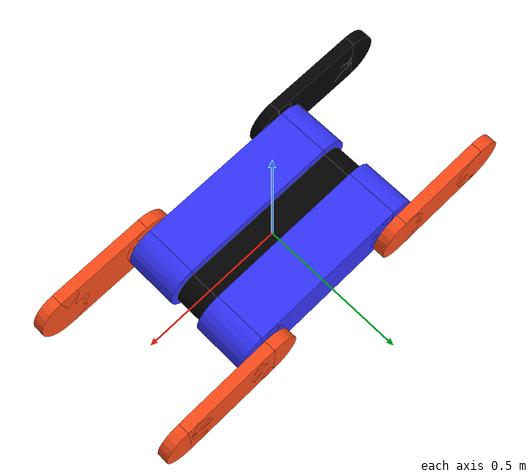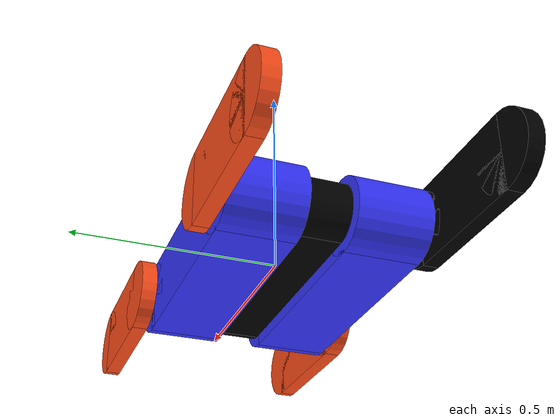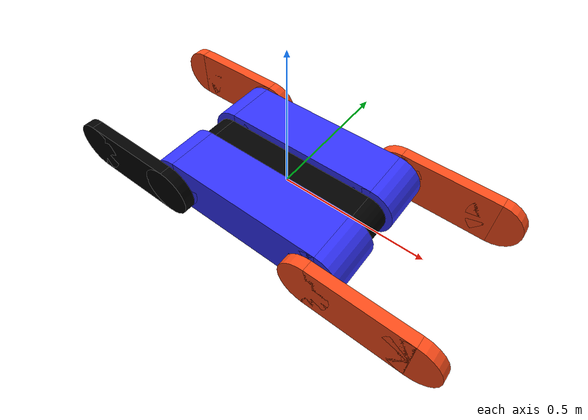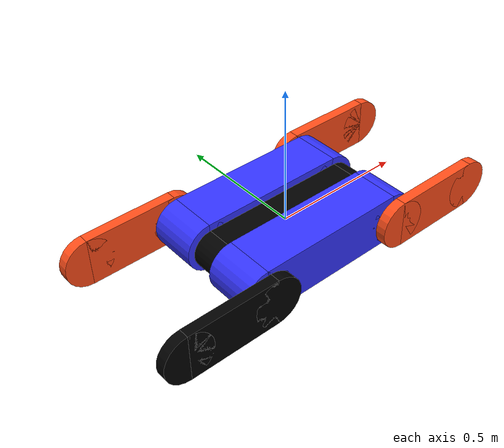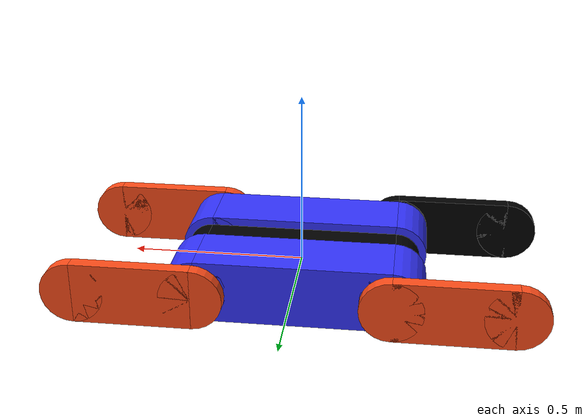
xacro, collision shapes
<?xml version='1.0'?>
<!-- This model is based on the robot developed by the NuBot team, this includes all the meshes -->

<robot name="tracked_vehicle" xmlns:xacro="http://www.ros.org/wiki/xacro">

    <gazebo>
        <self_collide>1</self_collide>
 </gazebo>
    <!-- Variables -->

    <xacro:property name="PI" value="3.1415926535897931"/>
    <xacro:property name="base_mass" value="15" />
    <xacro:property name="track_mass" value="10" />
    <xacro:property name="flipper_mass" value="2.5" />
    <xacro:property name="track_radius" value="0.091" />
    <xacro:property name="track_width" value="0.18" />
    <xacro:property name="track_length" value="0.552" />
    <xacro:property name="track_distance" value="0.145" />
    <xacro:property name="flipper_radius" value="0.09" />
    <xacro:property name="flipper_width" value="0.038" />
    <xacro:property name="flipper_length" value="0.336" />
    <xacro:property name="flipper_distance" value="0.266" />
    <xacro:property name="flipper_visual_bias" value="0.016" />

    <!-- Variables -->

    <!-- Colours -->

    <material name="white">
        <color rgba="1 1 1 1" />
    </material>
    <material name="orange">
        <color rgba="1 0.3 0.1 1"/>
    </material>
    <material name="blue">
        <color rgba="0.2 0.2 1 1"/>
    </material>
    <material name="black">
        <color rgba="0 0 0 1"/>
    </material>

    <!-- Colours -->

    <!-- BASE LINK -->

    <link name="base_link"/>

    <joint name="chassis_joint" type="fixed">
        <parent link="base_link"/>
        <child link="chassis_link"/>
        <origin xyz="-0.0 0 0"/>
    </joint>

    <!-- BASE LINK -->

    <!--chassis_link-->
    <link name='chassis_link'>

        <inertial>
            <origin xyz="0 0 0" rpy="0 0 0" />
            <mass value="${base_mass}" />
            <inertia ixx="5" ixy="0" ixz="0"
                iyy="5" iyz="0"
                izz="5" />
        </inertial>

        <collision name='base_collision_1'>
            <origin xyz="${track_length/2} 0 0" rpy="${PI/2} 0 0" />
            <geometry>
                <cylinder radius="0.07" length="0.10"/>
            </geometry>
        </collision>

        <collision name='base_collision_2'>
            <origin xyz="${-1*track_length/2} 0 0" rpy="${PI/2} 0 0" />
            <geometry>
                <cylinder radius="0.07" length="0.10"/>
            </geometry>
        </collision>

        <collision name='base_collision'>
            <origin xyz="0 0 0" rpy="0 0 0" />
            <geometry>
                <box size="${track_length} 0.10 0.14" />
            </geometry>
        </collision>

        <visual name='base_visual'>
            <origin xyz="0 0 0" rpy="0 0 0" />
            <material name="black"/>
            <geometry>
                <mesh filename="$(find tracked_robot)/description/meshes/base_link.STL" />
            </geometry>
        </visual>
    </link>

    <!--chassis_link-->

    <gazebo reference="chassis_link">
        <self_collide>1</self_collide>
        <mu1>1</mu1>
        <mu2>1</mu2>
        <kp value="10000000.0" />
        <kd value="1.0" />
        <fdir1 value="0 1 0" />
        <gravity>1</gravity>
        <maxContacts>2</maxContacts>
    </gazebo>

    <!--left_track - LINK-->

    <link name='left_track_link'>

        <inertial>
            <origin xyz="0 0 0" rpy="0 0 0" />
            <mass value="${track_mass}" />
            <inertia ixx="5" ixy="0" ixz="0"
                iyy="5" iyz="0"
                izz="5" />
        </inertial>

        <visual name='left_track_visual'>
            <origin xyz="0 ${-1*track_distance} 0" rpy="0 0 0" />
            <material name="blue"/>
            <geometry>
                <mesh filename="$(find tracked_robot)/description/meshes/left_track_link.STL" />
            </geometry>
        </visual>

        <collision name='left_track_collision_1'>
            <origin xyz="${track_length/2} 0 0" rpy="${PI/2} 0 0" />
            <geometry>
                <cylinder radius="${track_radius}" length="${track_width}"/>
            </geometry>
        </collision>

        <collision name='left_track_collision_2'>
            <origin xyz="${-1*track_length/2} 0 0" rpy="${PI/2} 0 0" />
            <geometry>
                <cylinder radius="${track_radius}" length="${track_width}"/>
            </geometry>
        </collision>

        <collision name='left_track_collision'>
            <origin xyz="0 0 0" rpy="0 0 0" />
            <geometry>
                <box size="${track_length} ${track_width} ${track_radius*2}" />
            </geometry>
        </collision>
    </link>

    <!--left_track - LINK-->

    <gazebo reference="left_track_link">
        <self_collide>1</self_collide>
        <mu1>10</mu1>
        <mu2>10</mu2>
        <kp value="10000000.0" />
        <kd value="1.0" />
        <fdir1 value="0 1 0" />
        <gravity>1</gravity>
        <maxContacts>2</maxContacts>
    </gazebo>

    <!--left_track joints-->

    <joint name='left_track_joint' type='revolute'>
        <!-- fixed -->
        <origin xyz="0 ${track_distance} 0" rpy="0 0 0" />
        <child link="left_track_link" />
        <parent link="chassis_link" />
        <limit lower="-1e-16" upper="1e-16" effort="10000" velocity="10000"/>
        <!-- This cannot be zero -->
        <axis xyz="0 0 0.00001"/>
        <dynamics damping="10000" friction="10000"/>
    </joint>

    <!--right_track - LINK-->

    <link name='right_track_link'>

        <inertial>
            <origin xyz="0 0 0" rpy="0 0 0" />
            <mass value="${track_mass}" />
            <inertia ixx="5" ixy="0" ixz="0"
                iyy="5" iyz="0"
                izz="5" />
        </inertial>

        <visual name='right_track_visual'>
            <origin xyz="0 ${track_distance} 0" rpy="0 0 0" />
            <material name="blue"/>
            <geometry>
                <mesh filename="$(find tracked_robot)/description/meshes/right_track_link.STL" />
            </geometry>
        </visual>

        <collision name='right_track_collision_1'>
            <origin xyz="${track_length/2} 0 0" rpy="${PI/2} 0 0" />
            <geometry>
                <cylinder radius="${track_radius}" length="${track_width}"/>
            </geometry>
        </collision>

        <collision name='right_track_collision_2'>
            <origin xyz="${-1*track_length/2} 0 0" rpy="${PI/2} 0 0" />
            <geometry>
                <cylinder radius="${track_radius}" length="${track_width}"/>
            </geometry>
        </collision>

        <collision name='right_track_collision'>
            <origin xyz="0 0 0" rpy="0 0 0" />
            <geometry>
                <box size="${track_length} ${track_width} ${track_radius*2}" />
            </geometry>
        </collision>
    </link>

    <!--right_track - LINK-->

    <gazebo reference="right_track_link">
        <self_collide>1</self_collide>
        <mu1>10</mu1>
        <mu2>10</mu2>
        <kp value="10000000.0" />
        <kd value="1.0" />
        <fdir1 value="0 1 0" />
        <gravity>1</gravity>
        <maxContacts>2</maxContacts>
    </gazebo>

    <!--right_track joints-->

    <joint name='right_track_joint' type='revolute'>
        <!-- fixed -->
        <origin xyz="0 ${-1*track_distance} 0" rpy="0 0 0" />
        <parent link="chassis_link" />
        <child link="right_track_link" />
        <limit lower="-1e-16" upper="1e-16" effort="10000" velocity="10000"/>
        <axis xyz="0 0 0.000001"/>
        <dynamics damping="10000" friction="10000"/>
    </joint>

    <!--rear_left_flipper - LINK-->

    <link name='rear_left_flipper_link'>

        <inertial>
            <origin xyz="${-1*flipper_length/2} 0 0" rpy="0 0 0" />
            <mass value="${flipper_mass}" />
            <inertia ixx="5" ixy="0" ixz="0"
                iyy="5" iyz="0"
                izz="5" />
        </inertial>

        <visual name='rear_left_flipper_visual'>

            <origin xyz="0 ${-1*flipper_visual_bias} 0" rpy="0 0 0" />
            <material name="orange"/>
            <geometry>
                <mesh filename="$(find tracked_robot)/description/meshes/back_left_fin_link.STL" />
            </geometry>

        </visual>

        <collision name='rear_left_flipper_collision_large_wheel_collision'>
            <origin xyz="0 0 0" rpy="${PI/2} 0 0" />
            <geometry>
                <cylinder radius="${flipper_radius}" length="${flipper_width}"/>
            </geometry>
        </collision>

        <collision name='rear_left_flipper_collision_small_wheel_collision'>

            <origin xyz="${-1*flipper_length} 0 0" rpy="${PI/2} 0 0" />
            <geometry>
                <cylinder radius="${flipper_radius}" length="${flipper_width}"/>
            </geometry>

        </collision>

        <collision name='rear_left_flipper_collision_middle_bar_collision'>
            <origin xyz="${-1*flipper_length/2} 0 0" rpy="0 0 0" />
            <geometry>
                <box size="${flipper_length} ${flipper_width} ${flipper_radius*2}" />
            </geometry>
        </collision>

    </link>

    <!--rear_left_flipper - LINK-->

    <gazebo reference="rear_left_flipper_link">

        <self_collide>1</self_collide>
        <mu1>10</mu1>
        <mu2>10</mu2>
        <kp value="10000000.0" />
        <kd value="1.0" />
        <fdir1 value="0 1 0" />
        <gravity>1</gravity>
        <maxContacts>2</maxContacts>

    </gazebo>

    <joint name='rear_left_flipper_joint' type='revolute'>
        <origin xyz="${-1*track_length/2} ${flipper_distance} 0" rpy="0 0 0" />
        <child link="rear_left_flipper_link" />
        <parent link="chassis_link" />
        <axis xyz="0 1 0" />
        <limit lower="-3" upper="3" effort="1" velocity="1.0" />
    </joint>

    <!--rear_right_flipper -LINK-->

    <link name='rear_right_flipper_link'>
        <inertial>
            <origin xyz="${-1*flipper_length/2} 0 0" rpy="0 0 0" />
            <mass value="${flipper_mass}" />
            <inertia ixx="5" ixy="0" ixz="0"
                iyy="5" iyz="0"
                izz="5" />
        </inertial>

        <visual name='rear_right_flipper_visual'>
            <origin xyz="0 ${flipper_visual_bias} 0" rpy="0 0 0" />
            <material name="black"/>
            <geometry>
                <mesh filename="$(find tracked_robot)/description/meshes/back_right_fin_link.STL" />
            </geometry>
        </visual>

        <collision name='rear_right_flipper_collision_large_wheel_collision'>
            <origin xyz="0 0 0" rpy="${PI/2} 0 0" />
            <geometry>
                <cylinder radius="${flipper_radius}" length="${flipper_width}"/>
            </geometry>
        </collision>

        <collision name='rear_right_flipper_collision_small_wheel_collision'>
            <origin xyz="${-1*flipper_length} 0 0" rpy="${PI/2} 0 0" />
            <geometry>
                <cylinder radius="${flipper_radius}" length="${flipper_width}"/>
            </geometry>
        </collision>

        <collision name='rear_right_flipper_collision_middle_bar_collision'>
            <origin xyz="${-1*flipper_length/2} 0 0" rpy="0 0 ${PI}" />
            <geometry>
                <box size="${flipper_length} ${flipper_width} ${flipper_radius*2}" />
            </geometry>
        </collision>
    </link>

    <!--rear_right_flipper -LINK-->

    <gazebo reference="rear_right_flipper_link">
        <self_collide>1</self_collide>
        <mu1>10</mu1>
        <mu2>10</mu2>
        <kp value="10000000.0" />
        <kd value="1.0" />
        <fdir1 value="0 1 0" />
        <gravity>1</gravity>
        <maxContacts>2</maxContacts>
    </gazebo>

    <joint name='rear_right_flipper_joint' type='revolute'>
        <origin xyz="${-1*track_length/2} ${-1*flipper_distance} 0" rpy="0 0 0" />
        <child link="rear_right_flipper_link" />
        <parent link="chassis_link" />
        <axis xyz="0 1 0" />
        <limit lower="-3" upper="3" effort="1" velocity="1.0" />
    </joint>

    <!--front_left_flipper -LINK-->

    <link name='front_left_flipper_link'>
        <inertial>
            <origin xyz="${flipper_length/2} 0 0" rpy="0 0 0" />
            <mass value="${flipper_mass}" />
            <inertia ixx="5" ixy="0" ixz="0"
                iyy="5" iyz="0"
                izz="5" />
        </inertial>

        <visual name='front_left_flipper_visual'>
            <origin xyz="0 ${-1*flipper_visual_bias} 0" rpy="0 0 0" />
            <material name="orange"/>

            <geometry>
                <mesh filename="$(find tracked_robot)/description/meshes/front_left_fin_link.STL" />
            </geometry>
        </visual>

        <collision name='front_left_flipper_collision_large_wheel_collision'>
            <origin xyz="0 0 0" rpy="${PI/2} 0 0" />
            <geometry>
                <cylinder radius="${flipper_radius}" length="${flipper_width}"/>
            </geometry>
        </collision>

        <collision name='front_left_flipper_collision_small_wheel_collision'>
            <origin xyz="${flipper_length} 0 0" rpy="${PI/2} 0 0" />
            <geometry>
                <cylinder radius="${flipper_radius}" length="${flipper_width}"/>
            </geometry>
        </collision>

        <collision name='front_left_flipper_collision_middle_bar_collision'>
            <origin xyz="${flipper_length/2} 0 0" rpy="0 0 0" />
            <geometry>
                <box size="${flipper_length} ${flipper_width} ${flipper_radius*2}" />
            </geometry>
        </collision>
    </link>

    <!--front_left_flipper - LINK-->

    <gazebo reference="front_left_flipper_link">
        <self_collide>1</self_collide>
        <mu1>10</mu1>
        <mu2>10</mu2>
        <kp value="10000000.0" />
        <kd value="1.0" />
        <fdir1 value="0 1 0" />
        <gravity>1</gravity>
        <maxContacts>2</maxContacts>
    </gazebo>

    <joint name='front_left_flipper_joint' type='revolute'>
        <origin xyz="${track_length/2} ${flipper_distance} 0" rpy="0 0 0" />
        <child link="front_left_flipper_link" />
        <parent link="chassis_link" />
        <axis xyz="0 1 0" />
        <limit lower="-3" upper="3" effort="1" velocity="1.0" />
    </joint>

    <!--front_right_flipper - LINK-->

    <link name='front_right_flipper_link'>
        <inertial>
            <origin xyz="${flipper_length/2} 0 0" rpy="0 0 0" />
            <mass value="${flipper_mass}" />
            <inertia ixx="5" ixy="0" ixz="0"
                iyy="5" iyz="0"
                izz="5" />
        </inertial>

        <visual name='front_right_flipper_link_visual'>
            <material name="orange"/>

            <origin xyz="0 ${flipper_visual_bias} 0" rpy="0 0 0" />
            <geometry>
                <mesh filename="$(find tracked_robot)/description/meshes/front_right_fin_link.STL" />
            </geometry>
        </visual>

        <collision name='front_right_flipper_collision_large_wheel_collision'>
            <origin xyz="0 0 0" rpy="${PI/2} 0 0" />
            <geometry>
                <cylinder radius="${flipper_radius}" length="${flipper_width}"/>
            </geometry>
        </collision>

        <collision name='front_right_flipper_collision_small_wheel_collision'>
            <origin xyz="${flipper_length} 0 0" rpy="${PI/2} 0 0" />
            <geometry>
                <cylinder radius="${flipper_radius}" length="${flipper_width}"/>
            </geometry>
        </collision>

        <collision name='front_right_flipper_collision_middle_bar_collision'>
            <origin xyz="${flipper_length/2} 0 0" rpy="0 0 ${PI}" />
            <geometry>
                <box size="${flipper_length} ${flipper_width} ${flipper_radius*2}" />
            </geometry>
        </collision>
    </link>

    <!--front_right_flipper - LINK-->

    <gazebo reference="front_right_flipper_link">
        <self_collide>1</self_collide>
        <mu1>10</mu1>
        <mu2>10</mu2>
        <kp value="10000000.0" />
        <kd value="1.0" />
        <fdir1 value="0 1 0" />
        <gravity>1</gravity>
        <maxContacts>2</maxContacts>
    </gazebo>

    <joint name='front_right_flipper_joint' type='revolute'>
        <origin xyz="${track_length/2} ${-1*flipper_distance} 0" rpy="0 0 0" />
        <child link="front_right_flipper_link" />
        <parent link="chassis_link" />
        <axis xyz="0 1 0" />
        <limit lower="-3" upper="3" effort="1" velocity="1.0" />
    </joint>

<!-- Plugins -->

    <gazebo>
        <plugin filename="libSimpleTrackedVehiclePlugin.so" name="tracked_vehicle_plugin">
            <body>base_link</body>
            <left_track>left_track_link</left_track>
            <right_track>right_track_link</right_track>
            <left_flipper>front_left_flipper_link</left_flipper>
            <left_flipper>rear_left_flipper_link</left_flipper>
            <right_flipper>front_right_flipper_link</right_flipper>
            <right_flipper>rear_right_flipper_link</right_flipper>
            <track_mu>2</track_mu>
            <track_mu2>0.5</track_mu2>
        </plugin>
    </gazebo>

    <gazebo>
        <plugin filename="libKeysToCmdVelPlugin.so" name="keyboard_control">
            <publish_as_twist>true</publish_as_twist>
            <!-- This MUST be the name of the ros package -->
            <cmd_vel_topic>~/tracked_robot/cmd_vel_twist</cmd_vel_topic>
        </plugin>
    </gazebo>

    <ros2_control name="GazeboSystem" type="system">
        <hardware>
            <plugin>gazebo_ros2_control/GazeboSystem</plugin>
        </hardware>
    <joint name="front_right_flipper_joint">
        <command_interface name="position">
          <param name="min">-1</param>
          <param name="max">1</param>
        </command_interface>
        <state_interface name="position"/>
        <state_interface name="velocity"/>
      </joint>

      <joint name="front_left_flipper_joint">
        <command_interface name="position">
          <param name="min">-1</param>
          <param name="max">1</param>
        </command_interface>
        <state_interface name="position"/>
      </joint>

      <joint name="rear_right_flipper_joint">
        <command_interface name="position">
          <param name="min">-1</param>
          <param name="max">1</param>
        </command_interface>
        <state_interface name="position"/>
      </joint>

      <joint name="rear_left_flipper_joint">
        <command_interface name="position">
          <param name="min">-1</param>
          <param name="max">1</param>
        </command_interface>
        <state_interface name="position"/>
      </joint>

    </ros2_control>

    <gazebo>
        <plugin filename="libgazebo_ros2_control.so" name="gazebo_ros2_control">
            <parameters>$(find tracked_robot)/config/flipper_joint.yaml</parameters>
        </plugin>
    </gazebo>

    <gazebo>
        <plugin filename="libhello_world.so" name="hello_world">
        </plugin>
    </gazebo>
</robot>
